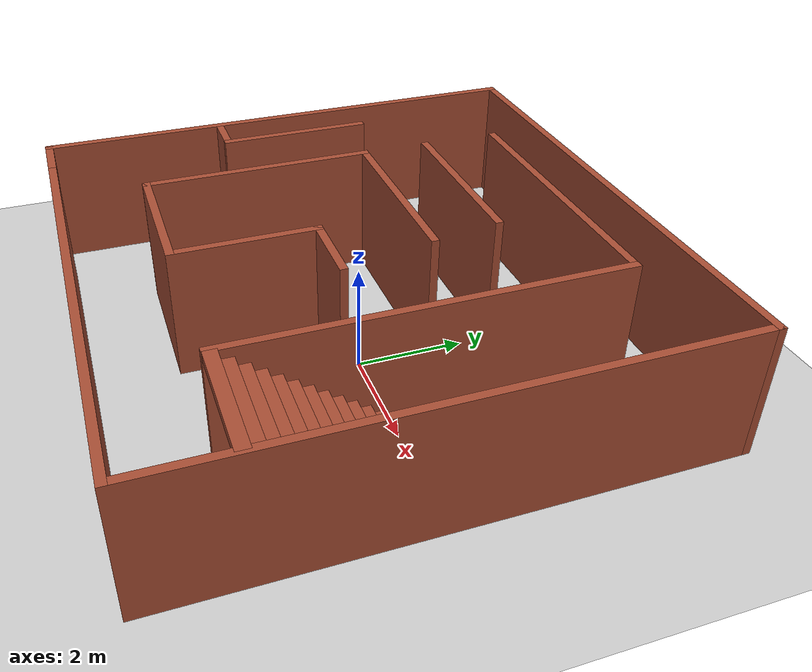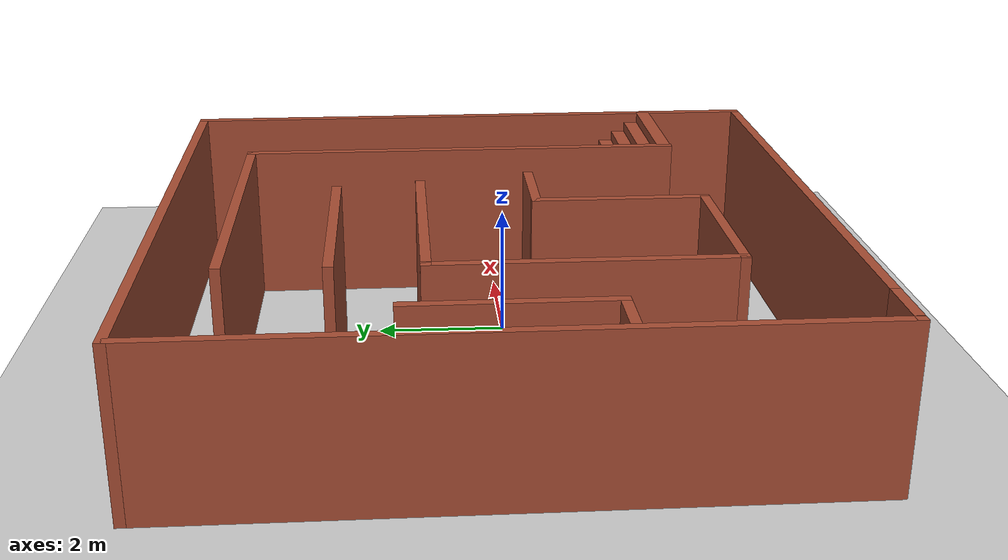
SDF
<sdf version="1.7">
 <world name="default">
  <model name="ground_plane">
   <static>1</static>
   <link name="link">
    <collision name="collision">
     <geometry><plane><normal>0 0 1</normal><size>100 100</size></plane></geometry>
     <surface>
      <contact><collide_bitmask>65535</collide_bitmask></contact>
      <friction><ode><mu>100</mu><mu2>50</mu2></ode></friction>
     </surface>
    </collision>
    <visual name="visual">
     <cast_shadows>0</cast_shadows>
     <geometry><plane><normal>0 0 1</normal><size>100 100</size></plane></geometry>
     <material>
      <script><uri>file://media/materials/scripts/gazebo.material</uri><name>Gazebo/Grey</name></script>
     </material>
    </visual>
   </link>
  </model>
  <model name="MazeFinal">
   <link name="Stairs_0">
    <visual name="Stairs_0_Visual_0">
     <pose>3.84922 0.083239 0.083333 0 -0 0</pose>
     <geometry><box><size>2.16243 0.233333 0.166667</size></box></geometry>
     <material>
      <script><uri>file://media/materials/scripts/gazebo.material</uri><name>Gazebo/Bricks</name></script>
      <ambient>1 1 1 1</ambient>
      <shader type="pixel"/>
     </material>
     <meta><layer>0</layer></meta>
    </visual>
    <visual name="Stairs_0_Visual_1">
     <pose>3.84922 -0.150095 0.25 0 -0 0</pose>
     <geometry><box><size>2.16243 0.233333 0.166667</size></box></geometry>
     <material>
      <script><uri>file://media/materials/scripts/gazebo.material</uri><name>Gazebo/Bricks</name></script>
      <ambient>1 1 1 1</ambient>
      <shader type="pixel"/>
     </material>
     <meta><layer>0</layer></meta>
    </visual>
    <visual name="Stairs_0_Visual_2">
     <pose>3.84922 -0.383428 0.416667 0 -0 0</pose>
     <geometry><box><size>2.16243 0.233333 0.166667</size></box></geometry>
     <material>
      <script><uri>file://media/materials/scripts/gazebo.material</uri><name>Gazebo/Bricks</name></script>
      <ambient>1 1 1 1</ambient>
      <shader type="pixel"/>
     </material>
     <meta><layer>0</layer></meta>
    </visual>
    <visual name="Stairs_0_Visual_3">
     <pose>3.84922 -0.616761 0.583333 0 -0 0</pose>
     <geometry><box><size>2.16243 0.233333 0.166667</size></box></geometry>
     <material>
      <script><uri>file://media/materials/scripts/gazebo.material</uri><name>Gazebo/Bricks</name></script>
      <ambient>1 1 1 1</ambient>
      <shader type="pixel"/>
     </material>
     <meta><layer>0</layer></meta>
    </visual>
    <visual name="Stairs_0_Visual_4">
     <pose>3.84922 -0.850095 0.75 0 -0 0</pose>
     <geometry><box><size>2.16243 0.233333 0.166667</size></box></geometry>
     <material>
      <script><uri>file://media/materials/scripts/gazebo.material</uri><name>Gazebo/Bricks</name></script>
      <ambient>1 1 1 1</ambient>
      <shader type="pixel"/>
     </material>
     <meta><layer>0</layer></meta>
    </visual>
    <visual name="Stairs_0_Visual_5">
     <pose>3.84922 -1.08343 0.916667 0 -0 0</pose>
     <geometry><box><size>2.16243 0.233333 0.166667</size></box></geometry>
     <material>
      <script><uri>file://media/materials/scripts/gazebo.material</uri><name>Gazebo/Bricks</name></script>
      <ambient>1 1 1 1</ambient>
      <shader type="pixel"/>
     </material>
     <meta><layer>0</layer></meta>
    </visual>
    <visual name="Stairs_0_Visual_6">
     <pose>3.84922 -1.31676 1.08333 0 -0 0</pose>
     <geometry><box><size>2.16243 0.233333 0.166667</size></box></geometry>
     <material>
      <script><uri>file://media/materials/scripts/gazebo.material</uri><name>Gazebo/Bricks</name></script>
      <ambient>1 1 1 1</ambient>
      <shader type="pixel"/>
     </material>
     <meta><layer>0</layer></meta>
    </visual>
    <visual name="Stairs_0_Visual_7">
     <pose>3.84922 -1.5501 1.25 0 -0 0</pose>
     <geometry><box><size>2.16243 0.233333 0.166667</size></box></geometry>
     <material>
      <script><uri>file://media/materials/scripts/gazebo.material</uri><name>Gazebo/Bricks</name></script>
      <ambient>1 1 1 1</ambient>
      <shader type="pixel"/>
     </material>
     <meta><layer>0</layer></meta>
    </visual>
    <visual name="Stairs_0_Visual_8">
     <pose>3.84922 -1.78343 1.41667 0 -0 0</pose>
     <geometry><box><size>2.16243 0.233333 0.166667</size></box></geometry>
     <material>
      <script><uri>file://media/materials/scripts/gazebo.material</uri><name>Gazebo/Bricks</name></script>
      <ambient>1 1 1 1</ambient>
      <shader type="pixel"/>
     </material>
     <meta><layer>0</layer></meta>
    </visual>
    <visual name="Stairs_0_Visual_9">
     <pose>3.84922 -2.01676 1.58333 0 -0 0</pose>
     <geometry><box><size>2.16243 0.233333 0.166667</size></box></geometry>
     <material>
      <script><uri>file://media/materials/scripts/gazebo.material</uri><name>Gazebo/Bricks</name></script>
      <ambient>1 1 1 1</ambient>
      <shader type="pixel"/>
     </material>
     <meta><layer>0</layer></meta>
    </visual>
    <visual name="Stairs_0_Visual_10">
     <pose>3.84922 -2.25009 1.75 0 -0 0</pose>
     <geometry><box><size>2.16243 0.233333 0.166667</size></box></geometry>
     <material>
      <script><uri>file://media/materials/scripts/gazebo.material</uri><name>Gazebo/Bricks</name></script>
      <ambient>1 1 1 1</ambient>
      <shader type="pixel"/>
     </material>
     <meta><layer>0</layer></meta>
    </visual>
    <visual name="Stairs_0_Visual_11">
     <pose>3.84922 -2.48343 1.91667 0 -0 0</pose>
     <geometry><box><size>2.16243 0.233333 0.166667</size></box></geometry>
     <material>
      <script><uri>file://media/materials/scripts/gazebo.material</uri><name>Gazebo/Bricks</name></script>
      <ambient>1 1 1 1</ambient>
      <shader type="pixel"/>
     </material>
     <meta><layer>0</layer></meta>
    </visual>
    <visual name="Stairs_0_Visual_12">
     <pose>3.84922 -2.71676 2.08333 0 -0 0</pose>
     <geometry><box><size>2.16243 0.233333 0.166667</size></box></geometry>
     <material>
      <script><uri>file://media/materials/scripts/gazebo.material</uri><name>Gazebo/Bricks</name></script>
      <ambient>1 1 1 1</ambient>
      <shader type="pixel"/>
     </material>
     <meta><layer>0</layer></meta>
    </visual>
    <visual name="Stairs_0_Visual_13">
     <pose>3.84922 -2.9501 2.25 0 -0 0</pose>
     <geometry><box><size>2.16243 0.233333 0.166667</size></box></geometry>
     <material>
      <script><uri>file://media/materials/scripts/gazebo.material</uri><name>Gazebo/Bricks</name></script>
      <ambient>1 1 1 1</ambient>
      <shader type="pixel"/>
     </material>
     <meta><layer>0</layer></meta>
    </visual>
    <visual name="Stairs_0_Visual_14">
     <pose>3.84922 -3.18343 2.41667 0 -0 0</pose>
     <geometry><box><size>2.16243 0.233333 0.166667</size></box></geometry>
     <material>
      <script><uri>file://media/materials/scripts/gazebo.material</uri><name>Gazebo/Bricks</name></script>
      <ambient>1 1 1 1</ambient>
      <shader type="pixel"/>
     </material>
     <meta><layer>0</layer></meta>
    </visual>
    <collision name="Stairs_0_Collision_0">
     <pose>3.84922 0.083239 0.083333 0 -0 0</pose>
     <geometry><box><size>2.16243 0.233333 0.166667</size></box></geometry>
     <surface>
      <friction>
       <ode><mu>1</mu><mu2>1</mu2><fdir1>0 0 0</fdir1><slip1>0</slip1><slip2>0</slip2></ode>
       <torsional>
        <coefficient>1</coefficient>
        <patch_radius>0</patch_radius>
        <surface_radius>0</surface_radius>
        <use_patch_radius>1</use_patch_radius>
        <ode><slip>0</slip></ode>
       </torsional>
      </friction>
      <bounce><restitution_coefficient>0</restitution_coefficient><threshold>1e+06</threshold></bounce>
      <contact>
       <collide_without_contact>0</collide_without_contact>
       <collide_without_contact_bitmask>1</collide_without_contact_bitmask>
       <collide_bitmask>1</collide_bitmask>
       <ode>
        <soft_cfm>0</soft_cfm>
        <soft_erp>0.2</soft_erp>
        <kp>1e+13</kp>
        <kd>1</kd>
        <max_vel>0.01</max_vel>
        <min_depth>0</min_depth>
       </ode>
       <bullet>
        <split_impulse>1</split_impulse>
        <split_impulse_penetration_threshold>-0.01</split_impulse_penetration_threshold>
        <soft_cfm>0</soft_cfm>
        <soft_erp>0.2</soft_erp>
        <kp>1e+13</kp>
        <kd>1</kd>
       </bullet>
      </contact>
     </surface>
    </collision>
    <collision name="Stairs_0_Collision_1">
     <pose>3.84922 -0.150095 0.25 0 -0 0</pose>
     <geometry><box><size>2.16243 0.233333 0.166667</size></box></geometry>
     <surface>
      <friction>
       <ode><mu>1</mu><mu2>1</mu2><fdir1>0 0 0</fdir1><slip1>0</slip1><slip2>0</slip2></ode>
       <torsional>
        <coefficient>1</coefficient>
        <patch_radius>0</patch_radius>
        <surface_radius>0</surface_radius>
        <use_patch_radius>1</use_patch_radius>
        <ode><slip>0</slip></ode>
       </torsional>
      </friction>
      <bounce><restitution_coefficient>0</restitution_coefficient><threshold>1e+06</threshold></bounce>
      <contact>
       <collide_without_contact>0</collide_without_contact>
       <collide_without_contact_bitmask>1</collide_without_contact_bitmask>
       <collide_bitmask>1</collide_bitmask>
       <ode>
        <soft_cfm>0</soft_cfm>
        <soft_erp>0.2</soft_erp>
        <kp>1e+13</kp>
        <kd>1</kd>
        <max_vel>0.01</max_vel>
        <min_depth>0</min_depth>
       </ode>
       <bullet>
        <split_impulse>1</split_impulse>
        <split_impulse_penetration_threshold>-0.01</split_impulse_penetration_threshold>
        <soft_cfm>0</soft_cfm>
        <soft_erp>0.2</soft_erp>
        <kp>1e+13</kp>
        <kd>1</kd>
       </bullet>
      </contact>
     </surface>
    </collision>
    <collision name="Stairs_0_Collision_2">
     <pose>3.84922 -0.383428 0.416667 0 -0 0</pose>
     <geometry><box><size>2.16243 0.233333 0.166667</size></box></geometry>
     <surface>
      <friction>
       <ode><mu>1</mu><mu2>1</mu2><fdir1>0 0 0</fdir1><slip1>0</slip1><slip2>0</slip2></ode>
       <torsional>
        <coefficient>1</coefficient>
        <patch_radius>0</patch_radius>
        <surface_radius>0</surface_radius>
        <use_patch_radius>1</use_patch_radius>
        <ode><slip>0</slip></ode>
       </torsional>
      </friction>
      <bounce><restitution_coefficient>0</restitution_coefficient><threshold>1e+06</threshold></bounce>
      <contact>
       <collide_without_contact>0</collide_without_contact>
       <collide_without_contact_bitmask>1</collide_without_contact_bitmask>
       <collide_bitmask>1</collide_bitmask>
       <ode>
        <soft_cfm>0</soft_cfm>
        <soft_erp>0.2</soft_erp>
        <kp>1e+13</kp>
        <kd>1</kd>
        <max_vel>0.01</max_vel>
        <min_depth>0</min_depth>
       </ode>
       <bullet>
        <split_impulse>1</split_impulse>
        <split_impulse_penetration_threshold>-0.01</split_impulse_penetration_threshold>
        <soft_cfm>0</soft_cfm>
        <soft_erp>0.2</soft_erp>
        <kp>1e+13</kp>
        <kd>1</kd>
       </bullet>
      </contact>
     </surface>
    </collision>
    <collision name="Stairs_0_Collision_3">
     <pose>3.84922 -0.616761 0.583333 0 -0 0</pose>
     <geometry><box><size>2.16243 0.233333 0.166667</size></box></geometry>
     <surface>
      <friction>
       <ode><mu>1</mu><mu2>1</mu2><fdir1>0 0 0</fdir1><slip1>0</slip1><slip2>0</slip2></ode>
       <torsional>
        <coefficient>1</coefficient>
        <patch_radius>0</patch_radius>
        <surface_radius>0</surface_radius>
        <use_patch_radius>1</use_patch_radius>
        <ode><slip>0</slip></ode>
       </torsional>
      </friction>
      <bounce><restitution_coefficient>0</restitution_coefficient><threshold>1e+06</threshold></bounce>
      <contact>
       <collide_without_contact>0</collide_without_contact>
       <collide_without_contact_bitmask>1</collide_without_contact_bitmask>
       <collide_bitmask>1</collide_bitmask>
       <ode>
        <soft_cfm>0</soft_cfm>
        <soft_erp>0.2</soft_erp>
        <kp>1e+13</kp>
        <kd>1</kd>
        <max_vel>0.01</max_vel>
        <min_depth>0</min_depth>
       </ode>
       <bullet>
        <split_impulse>1</split_impulse>
        <split_impulse_penetration_threshold>-0.01</split_impulse_penetration_threshold>
        <soft_cfm>0</soft_cfm>
        <soft_erp>0.2</soft_erp>
        <kp>1e+13</kp>
        <kd>1</kd>
       </bullet>
      </contact>
     </surface>
    </collision>
    <collision name="Stairs_0_Collision_4">
     <pose>3.84922 -0.850095 0.75 0 -0 0</pose>
     <geometry><box><size>2.16243 0.233333 0.166667</size></box></geometry>
     <surface>
      <friction>
       <ode><mu>1</mu><mu2>1</mu2><fdir1>0 0 0</fdir1><slip1>0</slip1><slip2>0</slip2></ode>
       <torsional>
        <coefficient>1</coefficient>
        <patch_radius>0</patch_radius>
        <surface_radius>0</surface_radius>
        <use_patch_radius>1</use_patch_radius>
        <ode><slip>0</slip></ode>
       </torsional>
      </friction>
      <bounce><restitution_coefficient>0</restitution_coefficient><threshold>1e+06</threshold></bounce>
      <contact>
       <collide_without_contact>0</collide_without_contact>
       <collide_without_contact_bitmask>1</collide_without_contact_bitmask>
       <collide_bitmask>1</collide_bitmask>
       <ode>
        <soft_cfm>0</soft_cfm>
        <soft_erp>0.2</soft_erp>
        <kp>1e+13</kp>
        <kd>1</kd>
        <max_vel>0.01</max_vel>
        <min_depth>0</min_depth>
       </ode>
       <bullet>
        <split_impulse>1</split_impulse>
        <split_impulse_penetration_threshold>-0.01</split_impulse_penetration_threshold>
        <soft_cfm>0</soft_cfm>
        <soft_erp>0.2</soft_erp>
        <kp>1e+13</kp>
        <kd>1</kd>
       </bullet>
      </contact>
     </surface>
    </collision>
    <collision name="Stairs_0_Collision_5">
     <pose>3.84922 -1.08343 0.916667 0 -0 0</pose>
     <geometry><box><size>2.16243 0.233333 0.166667</size></box></geometry>
     <surface>
      <friction>
       <ode><mu>1</mu><mu2>1</mu2><fdir1>0 0 0</fdir1><slip1>0</slip1><slip2>0</slip2></ode>
       <torsional>
        <coefficient>1</coefficient>
        <patch_radius>0</patch_radius>
        <surface_radius>0</surface_radius>
        <use_patch_radius>1</use_patch_radius>
        <ode><slip>0</slip></ode>
       </torsional>
      </friction>
      <bounce><restitution_coefficient>0</restitution_coefficient><threshold>1e+06</threshold></bounce>
      <contact>
       <collide_without_contact>0</collide_without_contact>
       <collide_without_contact_bitmask>1</collide_without_contact_bitmask>
       <collide_bitmask>1</collide_bitmask>
       <ode>
        <soft_cfm>0</soft_cfm>
        <soft_erp>0.2</soft_erp>
        <kp>1e+13</kp>
        <kd>1</kd>
        <max_vel>0.01</max_vel>
        <min_depth>0</min_depth>
       </ode>
       <bullet>
        <split_impulse>1</split_impulse>
        <split_impulse_penetration_threshold>-0.01</split_impulse_penetration_threshold>
        <soft_cfm>0</soft_cfm>
        <soft_erp>0.2</soft_erp>
        <kp>1e+13</kp>
        <kd>1</kd>
       </bullet>
      </contact>
     </surface>
    </collision>
    <collision name="Stairs_0_Collision_6">
     <pose>3.84922 -1.31676 1.08333 0 -0 0</pose>
     <geometry><box><size>2.16243 0.233333 0.166667</size></box></geometry>
     <surface>
      <friction>
       <ode><mu>1</mu><mu2>1</mu2><fdir1>0 0 0</fdir1><slip1>0</slip1><slip2>0</slip2></ode>
       <torsional>
        <coefficient>1</coefficient>
        <patch_radius>0</patch_radius>
        <surface_radius>0</surface_radius>
        <use_patch_radius>1</use_patch_radius>
        <ode><slip>0</slip></ode>
       </torsional>
      </friction>
      <bounce><restitution_coefficient>0</restitution_coefficient><threshold>1e+06</threshold></bounce>
      <contact>
       <collide_without_contact>0</collide_without_contact>
       <collide_without_contact_bitmask>1</collide_without_contact_bitmask>
       <collide_bitmask>1</collide_bitmask>
       <ode>
        <soft_cfm>0</soft_cfm>
        <soft_erp>0.2</soft_erp>
        <kp>1e+13</kp>
        <kd>1</kd>
        <max_vel>0.01</max_vel>
        <min_depth>0</min_depth>
       </ode>
       <bullet>
        <split_impulse>1</split_impulse>
        <split_impulse_penetration_threshold>-0.01</split_impulse_penetration_threshold>
        <soft_cfm>0</soft_cfm>
        <soft_erp>0.2</soft_erp>
        <kp>1e+13</kp>
        <kd>1</kd>
       </bullet>
      </contact>
     </surface>
    </collision>
    <collision name="Stairs_0_Collision_7">
     <pose>3.84922 -1.5501 1.25 0 -0 0</pose>
     <geometry><box><size>2.16243 0.233333 0.166667</size></box></geometry>
     <surface>
      <friction>
       <ode><mu>1</mu><mu2>1</mu2><fdir1>0 0 0</fdir1><slip1>0</slip1><slip2>0</slip2></ode>
       <torsional>
        <coefficient>1</coefficient>
        <patch_radius>0</patch_radius>
        <surface_radius>0</surface_radius>
        <use_patch_radius>1</use_patch_radius>
        <ode><slip>0</slip></ode>
       </torsional>
      </friction>
      <bounce><restitution_coefficient>0</restitution_coefficient><threshold>1e+06</threshold></bounce>
      <contact>
       <collide_without_contact>0</collide_without_contact>
       <collide_without_contact_bitmask>1</collide_without_contact_bitmask>
       <collide_bitmask>1</collide_bitmask>
       <ode>
        <soft_cfm>0</soft_cfm>
        <soft_erp>0.2</soft_erp>
        <kp>1e+13</kp>
        <kd>1</kd>
        <max_vel>0.01</max_vel>
        <min_depth>0</min_depth>
       </ode>
       <bullet>
        <split_impulse>1</split_impulse>
        <split_impulse_penetration_threshold>-0.01</split_impulse_penetration_threshold>
        <soft_cfm>0</soft_cfm>
        <soft_erp>0.2</soft_erp>
        <kp>1e+13</kp>
        <kd>1</kd>
       </bullet>
      </contact>
     </surface>
    </collision>
    <collision name="Stairs_0_Collision_8">
     <pose>3.84922 -1.78343 1.41667 0 -0 0</pose>
     <geometry><box><size>2.16243 0.233333 0.166667</size></box></geometry>
     <surface>
      <friction>
       <ode><mu>1</mu><mu2>1</mu2><fdir1>0 0 0</fdir1><slip1>0</slip1><slip2>0</slip2></ode>
       <torsional>
        <coefficient>1</coefficient>
        <patch_radius>0</patch_radius>
        <surface_radius>0</surface_radius>
        <use_patch_radius>1</use_patch_radius>
        <ode><slip>0</slip></ode>
       </torsional>
      </friction>
      <bounce><restitution_coefficient>0</restitution_coefficient><threshold>1e+06</threshold></bounce>
      <contact>
       <collide_without_contact>0</collide_without_contact>
       <collide_without_contact_bitmask>1</collide_without_contact_bitmask>
       <collide_bitmask>1</collide_bitmask>
       <ode>
        <soft_cfm>0</soft_cfm>
        <soft_erp>0.2</soft_erp>
        <kp>1e+13</kp>
        <kd>1</kd>
        <max_vel>0.01</max_vel>
        <min_depth>0</min_depth>
       </ode>
       <bullet>
        <split_impulse>1</split_impulse>
        <split_impulse_penetration_threshold>-0.01</split_impulse_penetration_threshold>
        <soft_cfm>0</soft_cfm>
        <soft_erp>0.2</soft_erp>
        <kp>1e+13</kp>
        <kd>1</kd>
       </bullet>
      </contact>
     </surface>
    </collision>
    <collision name="Stairs_0_Collision_9">
     <pose>3.84922 -2.01676 1.58333 0 -0 0</pose>
     <geometry><box><size>2.16243 0.233333 0.166667</size></box></geometry>
     <surface>
      <friction>
       <ode><mu>1</mu><mu2>1</mu2><fdir1>0 0 0</fdir1><slip1>0</slip1><slip2>0</slip2></ode>
       <torsional>
        <coefficient>1</coefficient>
        <patch_radius>0</patch_radius>
        <surface_radius>0</surface_radius>
        <use_patch_radius>1</use_patch_radius>
        <ode><slip>0</slip></ode>
       </torsional>
      </friction>
      <bounce><restitution_coefficient>0</restitution_coefficient><threshold>1e+06</threshold></bounce>
      <contact>
       <collide_without_contact>0</collide_without_contact>
       <collide_without_contact_bitmask>1</collide_without_contact_bitmask>
       <collide_bitmask>1</collide_bitmask>
       <ode>
        <soft_cfm>0</soft_cfm>
        <soft_erp>0.2</soft_erp>
        <kp>1e+13</kp>
        <kd>1</kd>
        <max_vel>0.01</max_vel>
        <min_depth>0</min_depth>
       </ode>
       <bullet>
        <split_impulse>1</split_impulse>
        <split_impulse_penetration_threshold>-0.01</split_impulse_penetration_threshold>
        <soft_cfm>0</soft_cfm>
        <soft_erp>0.2</soft_erp>
        <kp>1e+13</kp>
        <kd>1</kd>
       </bullet>
      </contact>
     </surface>
    </collision>
    <collision name="Stairs_0_Collision_10">
     <pose>3.84922 -2.25009 1.75 0 -0 0</pose>
     <geometry><box><size>2.16243 0.233333 0.166667</size></box></geometry>
     <surface>
      <friction>
       <ode><mu>1</mu><mu2>1</mu2><fdir1>0 0 0</fdir1><slip1>0</slip1><slip2>0</slip2></ode>
       <torsional>
        <coefficient>1</coefficient>
        <patch_radius>0</patch_radius>
        <surface_radius>0</surface_radius>
        <use_patch_radius>1</use_patch_radius>
        <ode><slip>0</slip></ode>
       </torsional>
      </friction>
      <bounce><restitution_coefficient>0</restitution_coefficient><threshold>1e+06</threshold></bounce>
      <contact>
       <collide_without_contact>0</collide_without_contact>
       <collide_without_contact_bitmask>1</collide_without_contact_bitmask>
       <collide_bitmask>1</collide_bitmask>
       <ode>
        <soft_cfm>0</soft_cfm>
        <soft_erp>0.2</soft_erp>
        <kp>1e+13</kp>
        <kd>1</kd>
        <max_vel>0.01</max_vel>
        <min_depth>0</min_depth>
       </ode>
       <bullet>
        <split_impulse>1</split_impulse>
        <split_impulse_penetration_threshold>-0.01</split_impulse_penetration_threshold>
        <soft_cfm>0</soft_cfm>
        <soft_erp>0.2</soft_erp>
        <kp>1e+13</kp>
        <kd>1</kd>
       </bullet>
      </contact>
     </surface>
    </collision>
    <collision name="Stairs_0_Collision_11">
     <pose>3.84922 -2.48343 1.91667 0 -0 0</pose>
     <geometry><box><size>2.16243 0.233333 0.166667</size></box></geometry>
     <surface>
      <friction>
       <ode><mu>1</mu><mu2>1</mu2><fdir1>0 0 0</fdir1><slip1>0</slip1><slip2>0</slip2></ode>
       <torsional>
        <coefficient>1</coefficient>
        <patch_radius>0</patch_radius>
        <surface_radius>0</surface_radius>
        <use_patch_radius>1</use_patch_radius>
        <ode><slip>0</slip></ode>
       </torsional>
      </friction>
      <bounce><restitution_coefficient>0</restitution_coefficient><threshold>1e+06</threshold></bounce>
      <contact>
       <collide_without_contact>0</collide_without_contact>
       <collide_without_contact_bitmask>1</collide_without_contact_bitmask>
       <collide_bitmask>1</collide_bitmask>
       <ode>
        <soft_cfm>0</soft_cfm>
        <soft_erp>0.2</soft_erp>
        <kp>1e+13</kp>
        <kd>1</kd>
        <max_vel>0.01</max_vel>
        <min_depth>0</min_depth>
       </ode>
       <bullet>
        <split_impulse>1</split_impulse>
        <split_impulse_penetration_threshold>-0.01</split_impulse_penetration_threshold>
        <soft_cfm>0</soft_cfm>
        <soft_erp>0.2</soft_erp>
        <kp>1e+13</kp>
        <kd>1</kd>
       </bullet>
      </contact>
     </surface>
    </collision>
    <collision name="Stairs_0_Collision_12">
     <pose>3.84922 -2.71676 2.08333 0 -0 0</pose>
     <geometry><box><size>2.16243 0.233333 0.166667</size></box></geometry>
     <surface>
      <friction>
       <ode><mu>1</mu><mu2>1</mu2><fdir1>0 0 0</fdir1><slip1>0</slip1><slip2>0</slip2></ode>
       <torsional>
        <coefficient>1</coefficient>
        <patch_radius>0</patch_radius>
        <surface_radius>0</surface_radius>
        <use_patch_radius>1</use_patch_radius>
        <ode><slip>0</slip></ode>
       </torsional>
      </friction>
      <bounce><restitution_coefficient>0</restitution_coefficient><threshold>1e+06</threshold></bounce>
      <contact>
       <collide_without_contact>0</collide_without_contact>
       <collide_without_contact_bitmask>1</collide_without_contact_bitmask>
       <collide_bitmask>1</collide_bitmask>
       <ode>
        <soft_cfm>0</soft_cfm>
        <soft_erp>0.2</soft_erp>
        <kp>1e+13</kp>
        <kd>1</kd>
        <max_vel>0.01</max_vel>
        <min_depth>0</min_depth>
       </ode>
       <bullet>
        <split_impulse>1</split_impulse>
        <split_impulse_penetration_threshold>-0.01</split_impulse_penetration_threshold>
        <soft_cfm>0</soft_cfm>
        <soft_erp>0.2</soft_erp>
        <kp>1e+13</kp>
        <kd>1</kd>
       </bullet>
      </contact>
     </surface>
    </collision>
    <collision name="Stairs_0_Collision_13">
     <pose>3.84922 -2.9501 2.25 0 -0 0</pose>
     <geometry><box><size>2.16243 0.233333 0.166667</size></box></geometry>
     <surface>
      <friction>
       <ode><mu>1</mu><mu2>1</mu2><fdir1>0 0 0</fdir1><slip1>0</slip1><slip2>0</slip2></ode>
       <torsional>
        <coefficient>1</coefficient>
        <patch_radius>0</patch_radius>
        <surface_radius>0</surface_radius>
        <use_patch_radius>1</use_patch_radius>
        <ode><slip>0</slip></ode>
       </torsional>
      </friction>
      <bounce><restitution_coefficient>0</restitution_coefficient><threshold>1e+06</threshold></bounce>
      <contact>
       <collide_without_contact>0</collide_without_contact>
       <collide_without_contact_bitmask>1</collide_without_contact_bitmask>
       <collide_bitmask>1</collide_bitmask>
       <ode>
        <soft_cfm>0</soft_cfm>
        <soft_erp>0.2</soft_erp>
        <kp>1e+13</kp>
        <kd>1</kd>
        <max_vel>0.01</max_vel>
        <min_depth>0</min_depth>
       </ode>
       <bullet>
        <split_impulse>1</split_impulse>
        <split_impulse_penetration_threshold>-0.01</split_impulse_penetration_threshold>
        <soft_cfm>0</soft_cfm>
        <soft_erp>0.2</soft_erp>
        <kp>1e+13</kp>
        <kd>1</kd>
       </bullet>
      </contact>
     </surface>
    </collision>
    <collision name="Stairs_0_Collision_14">
     <pose>3.84922 -3.18343 2.41667 0 -0 0</pose>
     <geometry><box><size>2.16243 0.233333 0.166667</size></box></geometry>
     <surface>
      <friction>
       <ode><mu>1</mu><mu2>1</mu2><fdir1>0 0 0</fdir1><slip1>0</slip1><slip2>0</slip2></ode>
       <torsional>
        <coefficient>1</coefficient>
        <patch_radius>0</patch_radius>
        <surface_radius>0</surface_radius>
        <use_patch_radius>1</use_patch_radius>
        <ode><slip>0</slip></ode>
       </torsional>
      </friction>
      <bounce><restitution_coefficient>0</restitution_coefficient><threshold>1e+06</threshold></bounce>
      <contact>
       <collide_without_contact>0</collide_without_contact>
       <collide_without_contact_bitmask>1</collide_without_contact_bitmask>
       <collide_bitmask>1</collide_bitmask>
       <ode>
        <soft_cfm>0</soft_cfm>
        <soft_erp>0.2</soft_erp>
        <kp>1e+13</kp>
        <kd>1</kd>
        <max_vel>0.01</max_vel>
        <min_depth>0</min_depth>
       </ode>
       <bullet>
        <split_impulse>1</split_impulse>
        <split_impulse_penetration_threshold>-0.01</split_impulse_penetration_threshold>
        <soft_cfm>0</soft_cfm>
        <soft_erp>0.2</soft_erp>
        <kp>1e+13</kp>
        <kd>1</kd>
       </bullet>
      </contact>
     </surface>
    </collision>
   </link>
   <link name="Wall_0">
    <pose>0 -4.925 0 0 -0 0</pose>
    <visual name="Wall_0_Visual_0">
     <pose>-4.93049 0 1.25 0 -0 0</pose>
     <geometry><box><size>0.139029 0.15 2.5</size></box></geometry>
     <material>
      <script><uri>file://media/materials/scripts/gazebo.material</uri><name>Gazebo/Bricks</name></script>
      <ambient>1 1 1 1</ambient>
      <shader type="pixel"/>
     </material>
     <meta><layer>0</layer></meta>
    </visual>
    <visual name="Wall_0_Visual_1">
     <pose>0.519515 0 1.25 0 -0 0</pose>
     <geometry><box><size>8.96097 0.15 2.5</size></box></geometry>
     <material>
      <script><uri>file://media/materials/scripts/gazebo.material</uri><name>Gazebo/Bricks</name></script>
      <ambient>1 1 1 1</ambient>
      <shader type="pixel"/>
     </material>
     <meta><layer>0</layer></meta>
    </visual>
    <visual name="Wall_0_Visual_2">
     <pose>-4.41097 0 2.25 0 -0 0</pose>
     <geometry><box><size>0.9 0.15 0.5</size></box></geometry>
     <material>
      <script><uri>file://media/materials/scripts/gazebo.material</uri><name>Gazebo/Bricks</name></script>
      <ambient>1 1 1 1</ambient>
      <shader type="pixel"/>
     </material>
     <meta><layer>0</layer></meta>
    </visual>
    <collision name="Wall_0_Collision_0">
     <pose>-4.93049 0 1.25 0 -0 0</pose>
     <geometry><box><size>0.139029 0.15 2.5</size></box></geometry>
     <surface>
      <friction>
       <ode><mu>1</mu><mu2>1</mu2><fdir1>0 0 0</fdir1><slip1>0</slip1><slip2>0</slip2></ode>
       <torsional>
        <coefficient>1</coefficient>
        <patch_radius>0</patch_radius>
        <surface_radius>0</surface_radius>
        <use_patch_radius>1</use_patch_radius>
        <ode><slip>0</slip></ode>
       </torsional>
      </friction>
      <bounce><restitution_coefficient>0</restitution_coefficient><threshold>1e+06</threshold></bounce>
      <contact>
       <collide_without_contact>0</collide_without_contact>
       <collide_without_contact_bitmask>1</collide_without_contact_bitmask>
       <collide_bitmask>1</collide_bitmask>
       <ode>
        <soft_cfm>0</soft_cfm>
        <soft_erp>0.2</soft_erp>
        <kp>1e+13</kp>
        <kd>1</kd>
        <max_vel>0.01</max_vel>
        <min_depth>0</min_depth>
       </ode>
       <bullet>
        <split_impulse>1</split_impulse>
        <split_impulse_penetration_threshold>-0.01</split_impulse_penetration_threshold>
        <soft_cfm>0</soft_cfm>
        <soft_erp>0.2</soft_erp>
        <kp>1e+13</kp>
        <kd>1</kd>
       </bullet>
      </contact>
     </surface>
    </collision>
    <collision name="Wall_0_Collision_1">
     <pose>0.519515 0 1.25 0 -0 0</pose>
     <geometry><box><size>8.96097 0.15 2.5</size></box></geometry>
     <surface>
      <friction>
       <ode><mu>1</mu><mu2>1</mu2><fdir1>0 0 0</fdir1><slip1>0</slip1><slip2>0</slip2></ode>
       <torsional>
        <coefficient>1</coefficient>
        <patch_radius>0</patch_radius>
        <surface_radius>0</surface_radius>
        <use_patch_radius>1</use_patch_radius>
        <ode><slip>0</slip></ode>
       </torsional>
      </friction>
      <bounce><restitution_coefficient>0</restitution_coefficient><threshold>1e+06</threshold></bounce>
      <contact>
       <collide_without_contact>0</collide_without_contact>
       <collide_without_contact_bitmask>1</collide_without_contact_bitmask>
       <collide_bitmask>1</collide_bitmask>
       <ode>
        <soft_cfm>0</soft_cfm>
        <soft_erp>0.2</soft_erp>
        <kp>1e+13</kp>
        <kd>1</kd>
        <max_vel>0.01</max_vel>
        <min_depth>0</min_depth>
       </ode>
       <bullet>
        <split_impulse>1</split_impulse>
        <split_impulse_penetration_threshold>-0.01</split_impulse_penetration_threshold>
        <soft_cfm>0</soft_cfm>
        <soft_erp>0.2</soft_erp>
        <kp>1e+13</kp>
        <kd>1</kd>
       </bullet>
      </contact>
     </surface>
    </collision>
    <collision name="Wall_0_Collision_2">
     <pose>-4.41097 0 2.25 0 -0 0</pose>
     <geometry><box><size>0.9 0.15 0.5</size></box></geometry>
     <surface>
      <friction>
       <ode><mu>1</mu><mu2>1</mu2><fdir1>0 0 0</fdir1><slip1>0</slip1><slip2>0</slip2></ode>
       <torsional>
        <coefficient>1</coefficient>
        <patch_radius>0</patch_radius>
        <surface_radius>0</surface_radius>
        <use_patch_radius>1</use_patch_radius>
        <ode><slip>0</slip></ode>
       </torsional>
      </friction>
      <bounce><restitution_coefficient>0</restitution_coefficient><threshold>1e+06</threshold></bounce>
      <contact>
       <collide_without_contact>0</collide_without_contact>
       <collide_without_contact_bitmask>1</collide_without_contact_bitmask>
       <collide_bitmask>1</collide_bitmask>
       <ode>
        <soft_cfm>0</soft_cfm>
        <soft_erp>0.2</soft_erp>
        <kp>1e+13</kp>
        <kd>1</kd>
        <max_vel>0.01</max_vel>
        <min_depth>0</min_depth>
       </ode>
       <bullet>
        <split_impulse>1</split_impulse>
        <split_impulse_penetration_threshold>-0.01</split_impulse_penetration_threshold>
        <soft_cfm>0</soft_cfm>
        <soft_erp>0.2</soft_erp>
        <kp>1e+13</kp>
        <kd>1</kd>
       </bullet>
      </contact>
     </surface>
    </collision>
   </link>
   <link name="Wall_1">
    <pose>4.925 0 0 0 -0 1.5708</pose>
    <visual name="Wall_1_Visual">
     <pose>0 0 1.25 0 -0 0</pose>
     <geometry><box><size>10 0.15 2.5</size></box></geometry>
     <material>
      <script><uri>file://media/materials/scripts/gazebo.material</uri><name>Gazebo/Bricks</name></script>
      <ambient>1 1 1 1</ambient>
      <shader type="pixel"/>
     </material>
     <meta><layer>0</layer></meta>
    </visual>
    <collision name="Wall_1_Collision">
     <pose>0 0 1.25 0 -0 0</pose>
     <geometry><box><size>10 0.15 2.5</size></box></geometry>
     <surface>
      <friction>
       <ode><mu>1</mu><mu2>1</mu2><fdir1>0 0 0</fdir1><slip1>0</slip1><slip2>0</slip2></ode>
       <torsional>
        <coefficient>1</coefficient>
        <patch_radius>0</patch_radius>
        <surface_radius>0</surface_radius>
        <use_patch_radius>1</use_patch_radius>
        <ode><slip>0</slip></ode>
       </torsional>
      </friction>
      <bounce><restitution_coefficient>0</restitution_coefficient><threshold>1e+06</threshold></bounce>
      <contact>
       <collide_without_contact>0</collide_without_contact>
       <collide_without_contact_bitmask>1</collide_without_contact_bitmask>
       <collide_bitmask>1</collide_bitmask>
       <ode>
        <soft_cfm>0</soft_cfm>
        <soft_erp>0.2</soft_erp>
        <kp>1e+13</kp>
        <kd>1</kd>
        <max_vel>0.01</max_vel>
        <min_depth>0</min_depth>
       </ode>
       <bullet>
        <split_impulse>1</split_impulse>
        <split_impulse_penetration_threshold>-0.01</split_impulse_penetration_threshold>
        <soft_cfm>0</soft_cfm>
        <soft_erp>0.2</soft_erp>
        <kp>1e+13</kp>
        <kd>1</kd>
       </bullet>
      </contact>
     </surface>
    </collision>
   </link>
   <link name="Wall_10">
    <pose>-0.96091 2.36545 0 0 -0 0</pose>
    <visual name="Wall_10_Visual">
     <pose>0 0 1.25 0 -0 0</pose>
     <geometry><box><size>3.5 0.15 2.5</size></box></geometry>
     <material>
      <script><uri>file://media/materials/scripts/gazebo.material</uri><name>Gazebo/Bricks</name></script>
      <ambient>1 1 1 1</ambient>
      <shader type="pixel"/>
     </material>
     <meta><layer>0</layer></meta>
    </visual>
    <collision name="Wall_10_Collision">
     <pose>0 0 1.25 0 -0 0</pose>
     <geometry><box><size>3.5 0.15 2.5</size></box></geometry>
     <surface>
      <friction>
       <ode><mu>1</mu><mu2>1</mu2><fdir1>0 0 0</fdir1><slip1>0</slip1><slip2>0</slip2></ode>
       <torsional>
        <coefficient>1</coefficient>
        <patch_radius>0</patch_radius>
        <surface_radius>0</surface_radius>
        <use_patch_radius>1</use_patch_radius>
        <ode><slip>0</slip></ode>
       </torsional>
      </friction>
      <bounce><restitution_coefficient>0</restitution_coefficient><threshold>1e+06</threshold></bounce>
      <contact>
       <collide_without_contact>0</collide_without_contact>
       <collide_without_contact_bitmask>1</collide_without_contact_bitmask>
       <collide_bitmask>1</collide_bitmask>
       <ode>
        <soft_cfm>0</soft_cfm>
        <soft_erp>0.2</soft_erp>
        <kp>1e+13</kp>
        <kd>1</kd>
        <max_vel>0.01</max_vel>
        <min_depth>0</min_depth>
       </ode>
       <bullet>
        <split_impulse>1</split_impulse>
        <split_impulse_penetration_threshold>-0.01</split_impulse_penetration_threshold>
        <soft_cfm>0</soft_cfm>
        <soft_erp>0.2</soft_erp>
        <kp>1e+13</kp>
        <kd>1</kd>
       </bullet>
      </contact>
     </surface>
    </collision>
   </link>
   <link name="Wall_13">
    <pose>0.06968 3.86438 0 0 -0 0</pose>
    <visual name="Wall_13_Visual">
     <pose>0 0 1.25 0 -0 0</pose>
     <geometry><box><size>5.5 0.15 2.5</size></box></geometry>
     <material>
      <script><uri>file://media/materials/scripts/gazebo.material</uri><name>Gazebo/Bricks</name></script>
      <ambient>1 1 1 1</ambient>
      <shader type="pixel"/>
     </material>
     <meta><layer>0</layer></meta>
    </visual>
    <collision name="Wall_13_Collision">
     <pose>0 0 1.25 0 -0 0</pose>
     <geometry><box><size>5.5 0.15 2.5</size></box></geometry>
     <surface>
      <friction>
       <ode><mu>1</mu><mu2>1</mu2><fdir1>0 0 0</fdir1><slip1>0</slip1><slip2>0</slip2></ode>
       <torsional>
        <coefficient>1</coefficient>
        <patch_radius>0</patch_radius>
        <surface_radius>0</surface_radius>
        <use_patch_radius>1</use_patch_radius>
        <ode><slip>0</slip></ode>
       </torsional>
      </friction>
      <bounce><restitution_coefficient>0</restitution_coefficient><threshold>1e+06</threshold></bounce>
      <contact>
       <collide_without_contact>0</collide_without_contact>
       <collide_without_contact_bitmask>1</collide_without_contact_bitmask>
       <collide_bitmask>1</collide_bitmask>
       <ode>
        <soft_cfm>0</soft_cfm>
        <soft_erp>0.2</soft_erp>
        <kp>1e+13</kp>
        <kd>1</kd>
        <max_vel>0.01</max_vel>
        <min_depth>0</min_depth>
       </ode>
       <bullet>
        <split_impulse>1</split_impulse>
        <split_impulse_penetration_threshold>-0.01</split_impulse_penetration_threshold>
        <soft_cfm>0</soft_cfm>
        <soft_erp>0.2</soft_erp>
        <kp>1e+13</kp>
        <kd>1</kd>
       </bullet>
      </contact>
     </surface>
    </collision>
   </link>
   <link name="Wall_14">
    <pose>2.74468 0.314376 0 0 0 -1.5708</pose>
    <visual name="Wall_14_Visual">
     <pose>0 0 1.25 0 -0 0</pose>
     <geometry><box><size>7.25 0.15 2.5</size></box></geometry>
     <material>
      <script><uri>file://media/materials/scripts/gazebo.material</uri><name>Gazebo/Bricks</name></script>
      <ambient>1 1 1 1</ambient>
      <shader type="pixel"/>
     </material>
     <meta><layer>0</layer></meta>
    </visual>
    <collision name="Wall_14_Collision">
     <pose>0 0 1.25 0 -0 0</pose>
     <geometry><box><size>7.25 0.15 2.5</size></box></geometry>
     <surface>
      <friction>
       <ode><mu>1</mu><mu2>1</mu2><fdir1>0 0 0</fdir1><slip1>0</slip1><slip2>0</slip2></ode>
       <torsional>
        <coefficient>1</coefficient>
        <patch_radius>0</patch_radius>
        <surface_radius>0</surface_radius>
        <use_patch_radius>1</use_patch_radius>
        <ode><slip>0</slip></ode>
       </torsional>
      </friction>
      <bounce><restitution_coefficient>0</restitution_coefficient><threshold>1e+06</threshold></bounce>
      <contact>
       <collide_without_contact>0</collide_without_contact>
       <collide_without_contact_bitmask>1</collide_without_contact_bitmask>
       <collide_bitmask>1</collide_bitmask>
       <ode>
        <soft_cfm>0</soft_cfm>
        <soft_erp>0.2</soft_erp>
        <kp>1e+13</kp>
        <kd>1</kd>
        <max_vel>0.01</max_vel>
        <min_depth>0</min_depth>
       </ode>
       <bullet>
        <split_impulse>1</split_impulse>
        <split_impulse_penetration_threshold>-0.01</split_impulse_penetration_threshold>
        <soft_cfm>0</soft_cfm>
        <soft_erp>0.2</soft_erp>
        <kp>1e+13</kp>
        <kd>1</kd>
       </bullet>
      </contact>
     </surface>
    </collision>
   </link>
   <link name="Wall_16">
    <pose>-1.36922 -3.29308 0 0 -0 0</pose>
    <visual name="Wall_16_Visual">
     <pose>0 0 1.25 0 -0 0</pose>
     <geometry><box><size>2.75 0.15 2.5</size></box></geometry>
     <material>
      <script><uri>file://media/materials/scripts/gazebo.material</uri><name>Gazebo/Bricks</name></script>
      <ambient>1 1 1 1</ambient>
      <shader type="pixel"/>
     </material>
     <meta><layer>0</layer></meta>
    </visual>
    <collision name="Wall_16_Collision">
     <pose>0 0 1.25 0 -0 0</pose>
     <geometry><box><size>2.75 0.15 2.5</size></box></geometry>
     <surface>
      <friction>
       <ode><mu>1</mu><mu2>1</mu2><fdir1>0 0 0</fdir1><slip1>0</slip1><slip2>0</slip2></ode>
       <torsional>
        <coefficient>1</coefficient>
        <patch_radius>0</patch_radius>
        <surface_radius>0</surface_radius>
        <use_patch_radius>1</use_patch_radius>
        <ode><slip>0</slip></ode>
       </torsional>
      </friction>
      <bounce><restitution_coefficient>0</restitution_coefficient><threshold>1e+06</threshold></bounce>
      <contact>
       <collide_without_contact>0</collide_without_contact>
       <collide_without_contact_bitmask>1</collide_without_contact_bitmask>
       <collide_bitmask>1</collide_bitmask>
       <ode>
        <soft_cfm>0</soft_cfm>
        <soft_erp>0.2</soft_erp>
        <kp>1e+13</kp>
        <kd>1</kd>
        <max_vel>0.01</max_vel>
        <min_depth>0</min_depth>
       </ode>
       <bullet>
        <split_impulse>1</split_impulse>
        <split_impulse_penetration_threshold>-0.01</split_impulse_penetration_threshold>
        <soft_cfm>0</soft_cfm>
        <soft_erp>0.2</soft_erp>
        <kp>1e+13</kp>
        <kd>1</kd>
       </bullet>
      </contact>
     </surface>
    </collision>
   </link>
   <link name="Wall_17">
    <pose>-0.069221 -1.99307 0 0 -0 1.5708</pose>
    <visual name="Wall_17_Visual">
     <pose>0 0 1.25 0 -0 0</pose>
     <geometry><box><size>2.75 0.15 2.5</size></box></geometry>
     <material>
      <script><uri>file://media/materials/scripts/gazebo.material</uri><name>Gazebo/Bricks</name></script>
      <ambient>1 1 1 1</ambient>
      <shader type="pixel"/>
     </material>
     <meta><layer>0</layer></meta>
    </visual>
    <collision name="Wall_17_Collision">
     <pose>0 0 1.25 0 -0 0</pose>
     <geometry><box><size>2.75 0.15 2.5</size></box></geometry>
     <surface>
      <friction>
       <ode><mu>1</mu><mu2>1</mu2><fdir1>0 0 0</fdir1><slip1>0</slip1><slip2>0</slip2></ode>
       <torsional>
        <coefficient>1</coefficient>
        <patch_radius>0</patch_radius>
        <surface_radius>0</surface_radius>
        <use_patch_radius>1</use_patch_radius>
        <ode><slip>0</slip></ode>
       </torsional>
      </friction>
      <bounce><restitution_coefficient>0</restitution_coefficient><threshold>1e+06</threshold></bounce>
      <contact>
       <collide_without_contact>0</collide_without_contact>
       <collide_without_contact_bitmask>1</collide_without_contact_bitmask>
       <collide_bitmask>1</collide_bitmask>
       <ode>
        <soft_cfm>0</soft_cfm>
        <soft_erp>0.2</soft_erp>
        <kp>1e+13</kp>
        <kd>1</kd>
        <max_vel>0.01</max_vel>
        <min_depth>0</min_depth>
       </ode>
       <bullet>
        <split_impulse>1</split_impulse>
        <split_impulse_penetration_threshold>-0.01</split_impulse_penetration_threshold>
        <soft_cfm>0</soft_cfm>
        <soft_erp>0.2</soft_erp>
        <kp>1e+13</kp>
        <kd>1</kd>
       </bullet>
      </contact>
     </surface>
    </collision>
   </link>
   <link name="Wall_18">
    <pose>0.605779 -0.693076 0 0 -0 0</pose>
    <visual name="Wall_18_Visual">
     <pose>0 0 1.25 0 -0 0</pose>
     <geometry><box><size>1.5 0.15 2.5</size></box></geometry>
     <material>
      <script><uri>file://media/materials/scripts/gazebo.material</uri><name>Gazebo/Bricks</name></script>
      <ambient>1 1 1 1</ambient>
      <shader type="pixel"/>
     </material>
     <meta><layer>0</layer></meta>
    </visual>
    <collision name="Wall_18_Collision">
     <pose>0 0 1.25 0 -0 0</pose>
     <geometry><box><size>1.5 0.15 2.5</size></box></geometry>
     <surface>
      <friction>
       <ode><mu>1</mu><mu2>1</mu2><fdir1>0 0 0</fdir1><slip1>0</slip1><slip2>0</slip2></ode>
       <torsional>
        <coefficient>1</coefficient>
        <patch_radius>0</patch_radius>
        <surface_radius>0</surface_radius>
        <use_patch_radius>1</use_patch_radius>
        <ode><slip>0</slip></ode>
       </torsional>
      </friction>
      <bounce><restitution_coefficient>0</restitution_coefficient><threshold>1e+06</threshold></bounce>
      <contact>
       <collide_without_contact>0</collide_without_contact>
       <collide_without_contact_bitmask>1</collide_without_contact_bitmask>
       <collide_bitmask>1</collide_bitmask>
       <ode>
        <soft_cfm>0</soft_cfm>
        <soft_erp>0.2</soft_erp>
        <kp>1e+13</kp>
        <kd>1</kd>
        <max_vel>0.01</max_vel>
        <min_depth>0</min_depth>
       </ode>
       <bullet>
        <split_impulse>1</split_impulse>
        <split_impulse_penetration_threshold>-0.01</split_impulse_penetration_threshold>
        <soft_cfm>0</soft_cfm>
        <soft_erp>0.2</soft_erp>
        <kp>1e+13</kp>
        <kd>1</kd>
       </bullet>
      </contact>
     </surface>
    </collision>
   </link>
   <link name="Wall_2">
    <pose>0 4.925 0 0 -0 3.14159</pose>
    <inertial>
     <mass>1</mass>
     <inertia><ixx>1</ixx><ixy>0</ixy><ixz>0</ixz><iyy>1</iyy><iyz>0</iyz><izz>1</izz></inertia>
    </inertial>
    <visual name="Wall_2_Visual">
     <pose>0 0 1.25 0 -0 0</pose>
     <geometry><box><size>10 0.15 2.5</size></box></geometry>
     <material>
      <script><uri>file://media/materials/scripts/gazebo.material</uri><name>Gazebo/Bricks</name></script>
      <ambient>1 1 1 1</ambient>
      <shader type="pixel"><normal_map>__default__</normal_map></shader>
     </material>
     <meta><layer>0</layer></meta>
    </visual>
    <collision name="Wall_2_Collision">
     <pose>0 0 1.25 0 -0 0</pose>
     <geometry><box><size>10 0.15 2.5</size></box></geometry>
     <surface>
      <friction>
       <ode><mu>1</mu><mu2>1</mu2><fdir1>0 0 0</fdir1><slip1>0</slip1><slip2>0</slip2></ode>
       <torsional>
        <coefficient>1</coefficient>
        <patch_radius>0</patch_radius>
        <surface_radius>0</surface_radius>
        <use_patch_radius>1</use_patch_radius>
        <ode><slip>0</slip></ode>
       </torsional>
      </friction>
      <bounce><restitution_coefficient>0</restitution_coefficient><threshold>1e+06</threshold></bounce>
      <contact>
       <collide_without_contact>0</collide_without_contact>
       <collide_without_contact_bitmask>1</collide_without_contact_bitmask>
       <collide_bitmask>1</collide_bitmask>
       <ode>
        <soft_cfm>0</soft_cfm>
        <soft_erp>0.2</soft_erp>
        <kp>1e+13</kp>
        <kd>1</kd>
        <max_vel>0.01</max_vel>
        <min_depth>0</min_depth>
       </ode>
       <bullet>
        <split_impulse>1</split_impulse>
        <split_impulse_penetration_threshold>-0.01</split_impulse_penetration_threshold>
        <soft_cfm>0</soft_cfm>
        <soft_erp>0.2</soft_erp>
        <kp>1e+13</kp>
        <kd>1</kd>
       </bullet>
      </contact>
     </surface>
    </collision>
   </link>
   <link name="Wall_20">
    <pose>-4.47459 -1.42773 0 0 -0 0</pose>
    <visual name="Wall_20_Visual">
     <pose>0 0 1.25 0 -0 0</pose>
     <geometry><box><size>1 0.15 2.5</size></box></geometry>
     <material>
      <script><uri>file://media/materials/scripts/gazebo.material</uri><name>Gazebo/Bricks</name></script>
      <ambient>1 1 1 1</ambient>
      <shader type="pixel"/>
     </material>
     <meta><layer>0</layer></meta>
    </visual>
    <collision name="Wall_20_Collision">
     <pose>0 0 1.25 0 -0 0</pose>
     <geometry><box><size>1 0.15 2.5</size></box></geometry>
     <surface>
      <friction>
       <ode><mu>1</mu><mu2>1</mu2><fdir1>0 0 0</fdir1><slip1>0</slip1><slip2>0</slip2></ode>
       <torsional>
        <coefficient>1</coefficient>
        <patch_radius>0</patch_radius>
        <surface_radius>0</surface_radius>
        <use_patch_radius>1</use_patch_radius>
        <ode><slip>0</slip></ode>
       </torsional>
      </friction>
      <bounce><restitution_coefficient>0</restitution_coefficient><threshold>1e+06</threshold></bounce>
      <contact>
       <collide_without_contact>0</collide_without_contact>
       <collide_without_contact_bitmask>1</collide_without_contact_bitmask>
       <collide_bitmask>1</collide_bitmask>
       <ode>
        <soft_cfm>0</soft_cfm>
        <soft_erp>0.2</soft_erp>
        <kp>1e+13</kp>
        <kd>1</kd>
        <max_vel>0.01</max_vel>
        <min_depth>0</min_depth>
       </ode>
       <bullet>
        <split_impulse>1</split_impulse>
        <split_impulse_penetration_threshold>-0.01</split_impulse_penetration_threshold>
        <soft_cfm>0</soft_cfm>
        <soft_erp>0.2</soft_erp>
        <kp>1e+13</kp>
        <kd>1</kd>
       </bullet>
      </contact>
     </surface>
    </collision>
   </link>
   <link name="Wall_21">
    <pose>-4.04959 -0.002734 0 0 -0 1.5708</pose>
    <visual name="Wall_21_Visual">
     <pose>0 0 1.25 0 -0 0</pose>
     <geometry><box><size>3 0.15 2.5</size></box></geometry>
     <material>
      <script><uri>file://media/materials/scripts/gazebo.material</uri><name>Gazebo/Bricks</name></script>
      <ambient>1 1 1 1</ambient>
      <shader type="pixel"/>
     </material>
     <meta><layer>0</layer></meta>
    </visual>
    <collision name="Wall_21_Collision">
     <pose>0 0 1.25 0 -0 0</pose>
     <geometry><box><size>3 0.15 2.5</size></box></geometry>
     <surface>
      <friction>
       <ode><mu>1</mu><mu2>1</mu2><fdir1>0 0 0</fdir1><slip1>0</slip1><slip2>0</slip2></ode>
       <torsional>
        <coefficient>1</coefficient>
        <patch_radius>0</patch_radius>
        <surface_radius>0</surface_radius>
        <use_patch_radius>1</use_patch_radius>
        <ode><slip>0</slip></ode>
       </torsional>
      </friction>
      <bounce><restitution_coefficient>0</restitution_coefficient><threshold>1e+06</threshold></bounce>
      <contact>
       <collide_without_contact>0</collide_without_contact>
       <collide_without_contact_bitmask>1</collide_without_contact_bitmask>
       <collide_bitmask>1</collide_bitmask>
       <ode>
        <soft_cfm>0</soft_cfm>
        <soft_erp>0.2</soft_erp>
        <kp>1e+13</kp>
        <kd>1</kd>
        <max_vel>0.01</max_vel>
        <min_depth>0</min_depth>
       </ode>
       <bullet>
        <split_impulse>1</split_impulse>
        <split_impulse_penetration_threshold>-0.01</split_impulse_penetration_threshold>
        <soft_cfm>0</soft_cfm>
        <soft_erp>0.2</soft_erp>
        <kp>1e+13</kp>
        <kd>1</kd>
       </bullet>
      </contact>
     </surface>
    </collision>
   </link>
   <link name="Wall_3">
    <pose>-4.925 0 0 0 0 -1.5708</pose>
    <visual name="Wall_3_Visual">
     <pose>0 0 1.25 0 -0 0</pose>
     <geometry><box><size>10 0.15 2.5</size></box></geometry>
     <material>
      <script><uri>file://media/materials/scripts/gazebo.material</uri><name>Gazebo/Bricks</name></script>
      <ambient>1 1 1 1</ambient>
      <shader type="pixel"/>
     </material>
     <meta><layer>0</layer></meta>
    </visual>
    <collision name="Wall_3_Collision">
     <pose>0 0 1.25 0 -0 0</pose>
     <geometry><box><size>10 0.15 2.5</size></box></geometry>
     <surface>
      <friction>
       <ode><mu>1</mu><mu2>1</mu2><fdir1>0 0 0</fdir1><slip1>0</slip1><slip2>0</slip2></ode>
       <torsional>
        <coefficient>1</coefficient>
        <patch_radius>0</patch_radius>
        <surface_radius>0</surface_radius>
        <use_patch_radius>1</use_patch_radius>
        <ode><slip>0</slip></ode>
       </torsional>
      </friction>
      <bounce><restitution_coefficient>0</restitution_coefficient><threshold>1e+06</threshold></bounce>
      <contact>
       <collide_without_contact>0</collide_without_contact>
       <collide_without_contact_bitmask>1</collide_without_contact_bitmask>
       <collide_bitmask>1</collide_bitmask>
       <ode>
        <soft_cfm>0</soft_cfm>
        <soft_erp>0.2</soft_erp>
        <kp>1e+13</kp>
        <kd>1</kd>
        <max_vel>0.01</max_vel>
        <min_depth>0</min_depth>
       </ode>
       <bullet>
        <split_impulse>1</split_impulse>
        <split_impulse_penetration_threshold>-0.01</split_impulse_penetration_threshold>
        <soft_cfm>0</soft_cfm>
        <soft_erp>0.2</soft_erp>
        <kp>1e+13</kp>
        <kd>1</kd>
       </bullet>
      </contact>
     </surface>
    </collision>
   </link>
   <link name="Wall_7">
    <pose>-2.66922 -1.11808 0 0 -0 1.5708</pose>
    <visual name="Wall_7_Visual">
     <pose>0 0 1.25 0 -0 0</pose>
     <geometry><box><size>4.5 0.15 2.5</size></box></geometry>
     <material>
      <script><uri>file://media/materials/scripts/gazebo.material</uri><name>Gazebo/Bricks</name></script>
      <ambient>1 1 1 1</ambient>
      <shader type="pixel"/>
     </material>
     <meta><layer>0</layer></meta>
    </visual>
    <collision name="Wall_7_Collision">
     <pose>0 0 1.25 0 -0 0</pose>
     <geometry><box><size>4.5 0.15 2.5</size></box></geometry>
     <surface>
      <friction>
       <ode><mu>1</mu><mu2>1</mu2><fdir1>0 0 0</fdir1><slip1>0</slip1><slip2>0</slip2></ode>
       <torsional>
        <coefficient>1</coefficient>
        <patch_radius>0</patch_radius>
        <surface_radius>0</surface_radius>
        <use_patch_radius>1</use_patch_radius>
        <ode><slip>0</slip></ode>
       </torsional>
      </friction>
      <bounce><restitution_coefficient>0</restitution_coefficient><threshold>1e+06</threshold></bounce>
      <contact>
       <collide_without_contact>0</collide_without_contact>
       <collide_without_contact_bitmask>1</collide_without_contact_bitmask>
       <collide_bitmask>1</collide_bitmask>
       <ode>
        <soft_cfm>0</soft_cfm>
        <soft_erp>0.2</soft_erp>
        <kp>1e+13</kp>
        <kd>1</kd>
        <max_vel>0.01</max_vel>
        <min_depth>0</min_depth>
       </ode>
       <bullet>
        <split_impulse>1</split_impulse>
        <split_impulse_penetration_threshold>-0.01</split_impulse_penetration_threshold>
        <soft_cfm>0</soft_cfm>
        <soft_erp>0.2</soft_erp>
        <kp>1e+13</kp>
        <kd>1</kd>
       </bullet>
      </contact>
     </surface>
    </collision>
   </link>
   <link name="Wall_8">
    <pose>-0.869221 1.05692 0 0 -0 0</pose>
    <visual name="Wall_8_Visual">
     <pose>0 0 1.25 0 -0 0</pose>
     <geometry><box><size>3.75 0.15 2.5</size></box></geometry>
     <material>
      <script><uri>file://media/materials/scripts/gazebo.material</uri><name>Gazebo/Bricks</name></script>
      <ambient>1 1 1 1</ambient>
      <shader type="pixel"/>
     </material>
     <meta><layer>0</layer></meta>
    </visual>
    <collision name="Wall_8_Collision">
     <pose>0 0 1.25 0 -0 0</pose>
     <geometry><box><size>3.75 0.15 2.5</size></box></geometry>
     <surface>
      <friction>
       <ode><mu>1</mu><mu2>1</mu2><fdir1>0 0 0</fdir1><slip1>0</slip1><slip2>0</slip2></ode>
       <torsional>
        <coefficient>1</coefficient>
        <patch_radius>0</patch_radius>
        <surface_radius>0</surface_radius>
        <use_patch_radius>1</use_patch_radius>
        <ode><slip>0</slip></ode>
       </torsional>
      </friction>
      <bounce><restitution_coefficient>0</restitution_coefficient><threshold>1e+06</threshold></bounce>
      <contact>
       <collide_without_contact>0</collide_without_contact>
       <collide_without_contact_bitmask>1</collide_without_contact_bitmask>
       <collide_bitmask>1</collide_bitmask>
       <ode>
        <soft_cfm>0</soft_cfm>
        <soft_erp>0.2</soft_erp>
        <kp>1e+13</kp>
        <kd>1</kd>
        <max_vel>0.01</max_vel>
        <min_depth>0</min_depth>
       </ode>
       <bullet>
        <split_impulse>1</split_impulse>
        <split_impulse_penetration_threshold>-0.01</split_impulse_penetration_threshold>
        <soft_cfm>0</soft_cfm>
        <soft_erp>0.2</soft_erp>
        <kp>1e+13</kp>
        <kd>1</kd>
       </bullet>
      </contact>
     </surface>
    </collision>
   </link>
   <static>1</static>
   <pose>-0.785 0.245 0 0 -0 0</pose>
  </model>
 </world>
</sdf>
